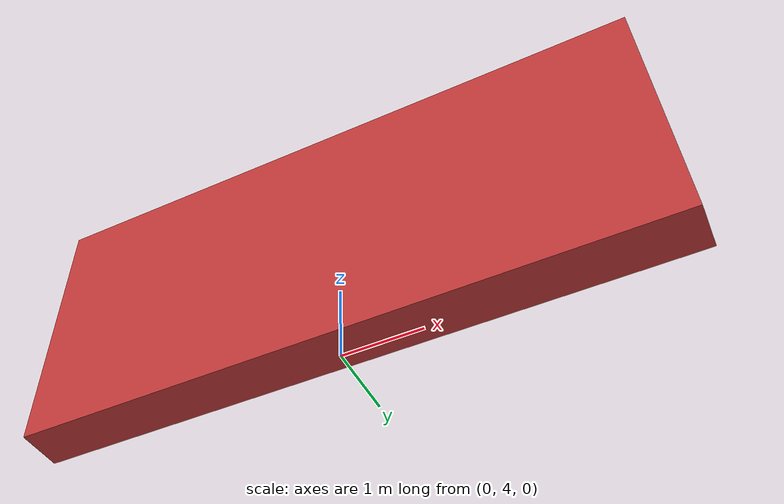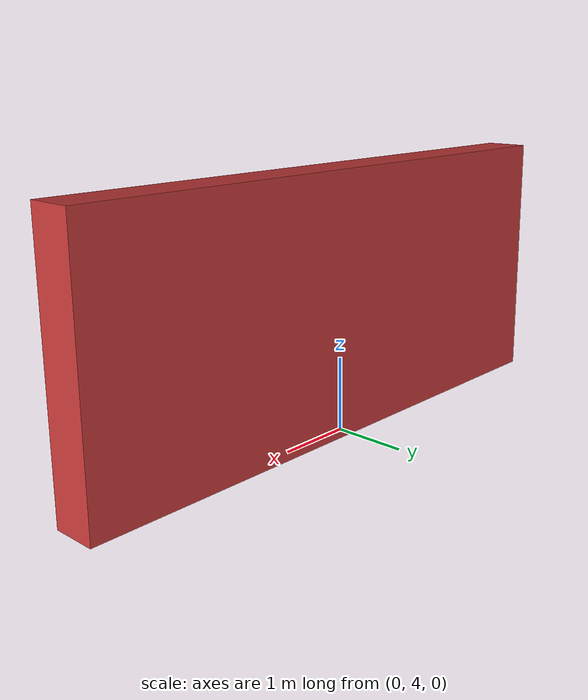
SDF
<?xml version="1.0" ?>
<sdf version="1.10">
    <model name="verticalWall0_6x8_1x3_5">
      <static>true</static>
      <pose>0 3.9 1.75 0 0 1.5708</pose>
      <link name="link">
        <collision name="collision">
          <geometry><box><size>0.6 8.1 3.5</size></box></geometry>
        </collision>
        <visual name="visual">
          <geometry><box><size>0.6 8.1 3.5</size></box></geometry>
          <material>
            <ambient>0.76 0.22 0.22 1</ambient>
            <diffuse>0.76 0.22 0.22 1</diffuse>
            <specular>0.56 0.44 0.44 1</specular>
          </material>
        </visual>
      </link>
    </model>
</sdf>
